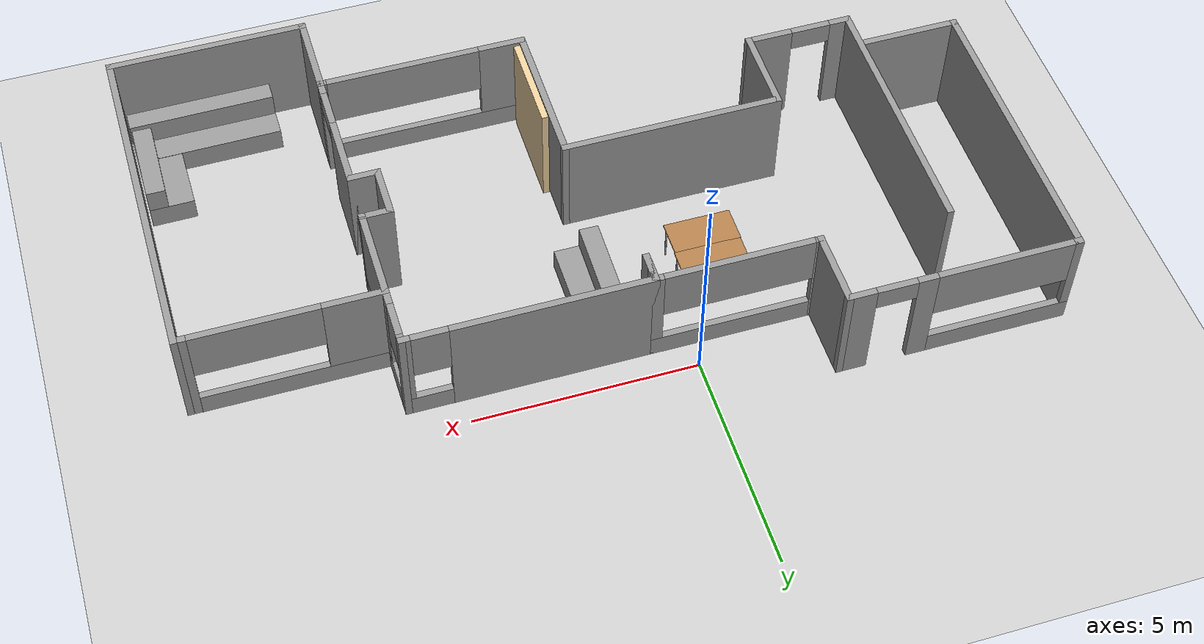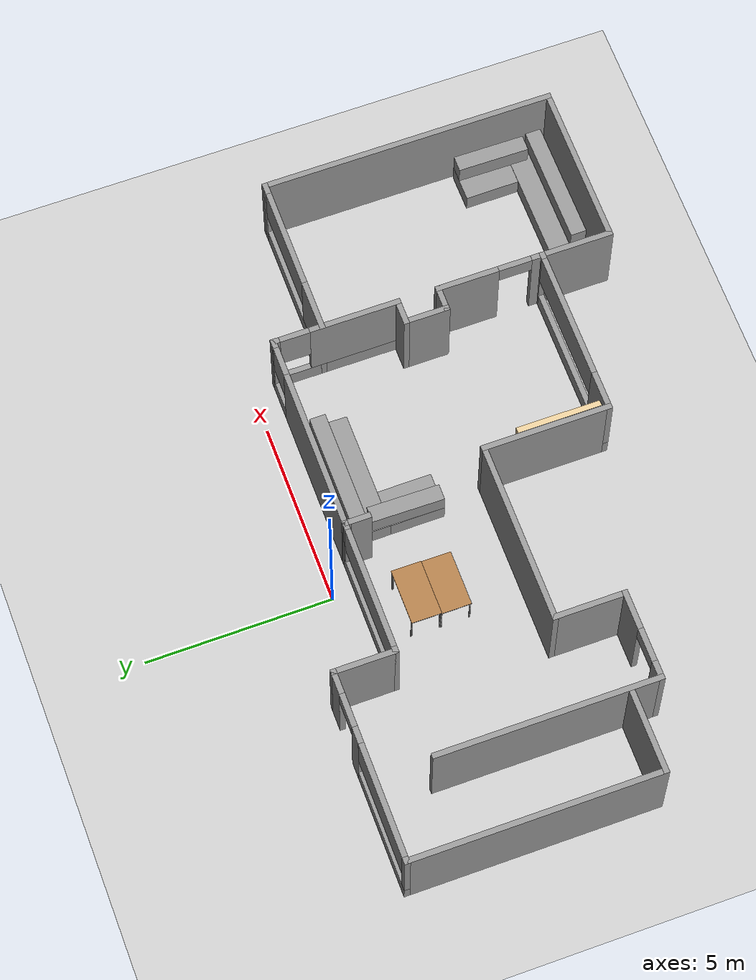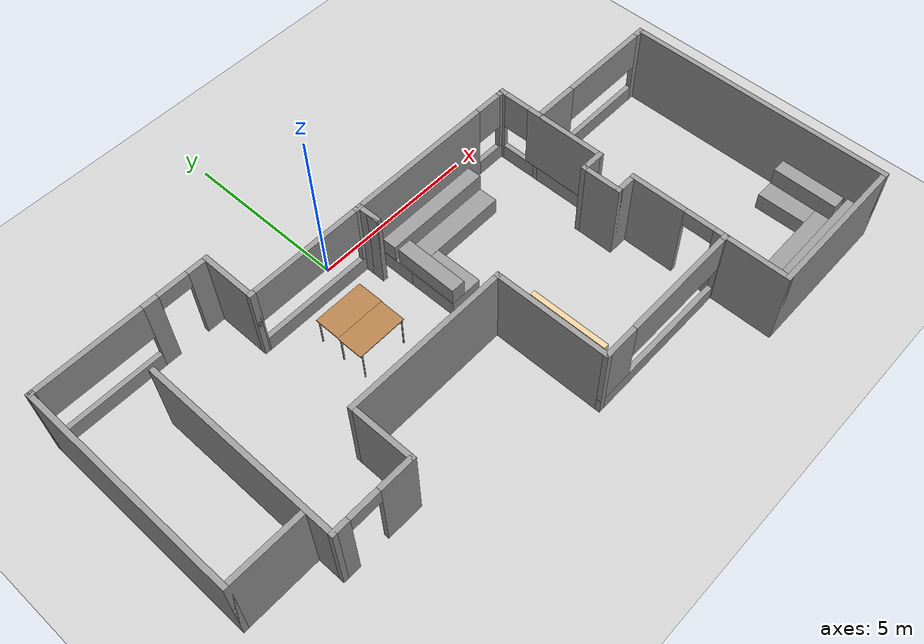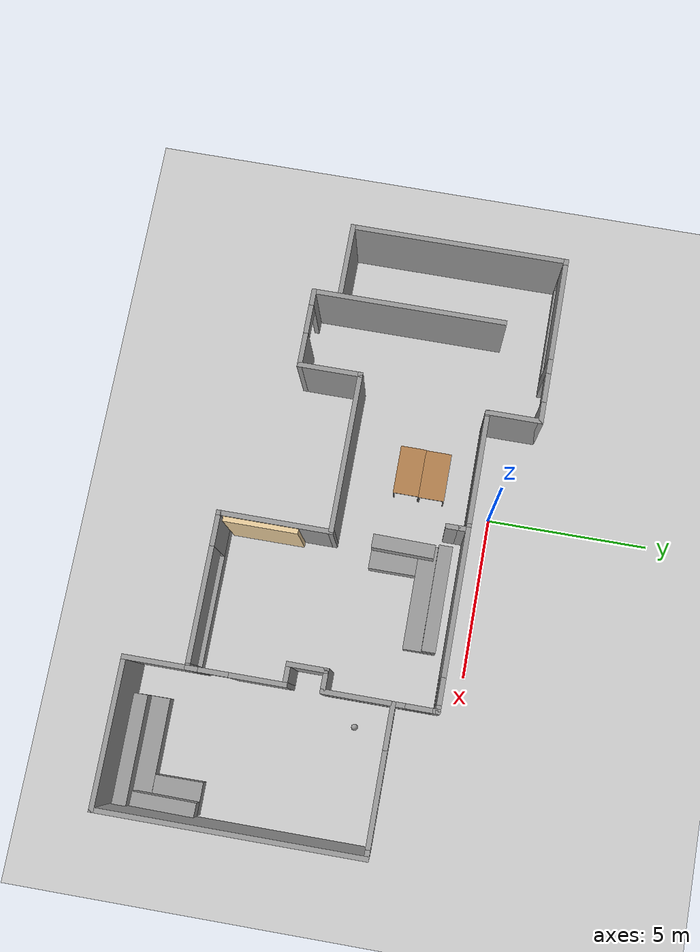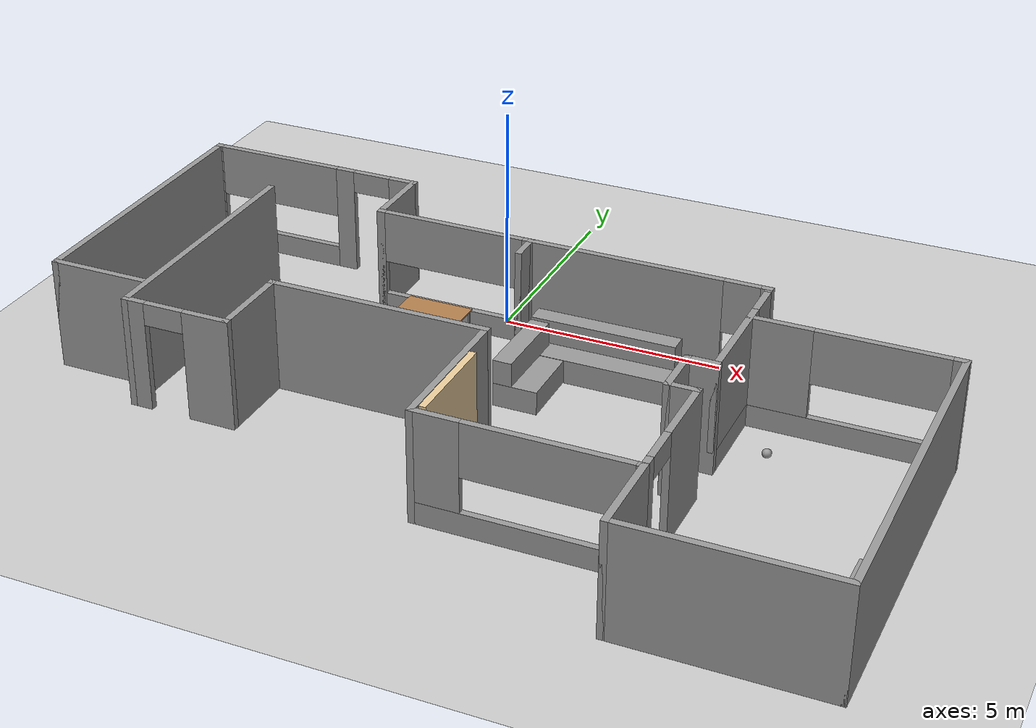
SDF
<sdf version="1.7">
 <world name="default">
  <plugin name="hello" filename="libhello.so"/>
  <light name="sun" type="directional">
   <pose>0 0 10 0 -0 0</pose>
   <diffuse>0.8 0.8 0.8 1</diffuse>
   <specular>0.2 0.2 0.2 1</specular>
   <attenuation>
    <range>1000</range>
    <constant>0.9</constant>
    <linear>0.01</linear>
    <quadratic>0.001</quadratic>
   </attenuation>
   <direction>-0.5 0.1 -0.9</direction>
   <spot><inner_angle>0</inner_angle><outer_angle>0</outer_angle><falloff>0</falloff></spot>
  </light>
  <model name="ground_plane">
   <static>1</static>
   <link name="link">
    <collision name="collision">
     <geometry><plane><normal>0 0 1</normal><size>100 100</size></plane></geometry>
     <surface>
      <contact><collide_bitmask>65535</collide_bitmask></contact>
      <friction><ode><mu>100</mu><mu2>50</mu2></ode></friction>
     </surface>
    </collision>
    <visual name="visual">
     <cast_shadows>0</cast_shadows>
     <geometry><plane><normal>0 0 1</normal><size>100 100</size></plane></geometry>
     <material>
      <script><uri>file://media/materials/scripts/gazebo.material</uri><name>Gazebo/Grey</name></script>
     </material>
    </visual>
   </link>
  </model>
  <gravity>0 0 -9.8</gravity>
  <magnetic_field>6e-06 2.3e-05 -4.2e-05</magnetic_field>
  <atmosphere type="adiabatic"/>
  <physics type="ode">
   <max_step_size>0.001</max_step_size>
   <real_time_factor>1</real_time_factor>
   <real_time_update_rate>1000</real_time_update_rate>
  </physics>
  <scene><ambient>0.4 0.4 0.4 1</ambient><background>0.7 0.7 0.7 1</background><shadows>1</shadows></scene>
  <spherical_coordinates>
   <surface_model>EARTH_WGS84</surface_model>
   <latitude_deg>0</latitude_deg>
   <longitude_deg>0</longitude_deg>
   <elevation>0</elevation>
   <heading_deg>0</heading_deg>
  </spherical_coordinates>
  <model name="home">
   <pose>1.33369 -4.43199 0 0 -0 0</pose>
   <link name="Wall_1">
    <pose>-2.3 3.775 0 0 -0 0</pose>
    <visual name="Wall_1_Visual_0">
     <pose>-1.7772 0 1.25 0 -0 0</pose>
     <geometry><box><size>0.195597 0.15 2.5</size></box></geometry>
     <material>
      <script><uri>file://media/materials/scripts/gazebo.material</uri><name>Gazebo/Grey</name></script>
      <ambient>1 1 1 1</ambient>
     </material>
     <meta><layer>0</layer></meta>
    </visual>
    <collision name="Wall_1_Collision_0">
     <geometry><box><size>0.195597 0.15 2.5</size></box></geometry>
     <pose>-1.7772 0 1.25 0 -0 0</pose>
    </collision>
    <visual name="Wall_1_Visual_1">
     <pose>0.097799 0 0.25 0 -0 0</pose>
     <geometry><box><size>3.5544 0.15 0.5</size></box></geometry>
     <material>
      <script><uri>file://media/materials/scripts/gazebo.material</uri><name>Gazebo/Grey</name></script>
      <ambient>1 1 1 1</ambient>
     </material>
     <meta><layer>0</layer></meta>
    </visual>
    <collision name="Wall_1_Collision_1">
     <geometry><box><size>3.5544 0.15 0.5</size></box></geometry>
     <pose>0.097799 0 0.25 0 -0 0</pose>
    </collision>
    <visual name="Wall_1_Visual_2">
     <pose>1.74801 0 1.5 0 -0 0</pose>
     <geometry><box><size>0.253984 0.15 2</size></box></geometry>
     <material>
      <script><uri>file://media/materials/scripts/gazebo.material</uri><name>Gazebo/Grey</name></script>
      <ambient>1 1 1 1</ambient>
     </material>
     <meta><layer>0</layer></meta>
    </visual>
    <collision name="Wall_1_Collision_2">
     <geometry><box><size>0.253984 0.15 2</size></box></geometry>
     <pose>1.74801 0 1.5 0 -0 0</pose>
    </collision>
    <visual name="Wall_1_Visual_3">
     <pose>-0.029193 0 1.9 0 -0 0</pose>
     <geometry><box><size>3.30042 0.15 1.2</size></box></geometry>
     <material>
      <script><uri>file://media/materials/scripts/gazebo.material</uri><name>Gazebo/Grey</name></script>
      <ambient>1 1 1 1</ambient>
     </material>
     <meta><layer>0</layer></meta>
    </visual>
    <collision name="Wall_1_Collision_3">
     <geometry><box><size>3.30042 0.15 1.2</size></box></geometry>
     <pose>-0.029193 0 1.9 0 -0 0</pose>
    </collision>
   </link>
   <link name="Wall_10">
    <pose>2.55 -3.525 0 0 -0 3.14159</pose>
    <visual name="Wall_10_Visual_0">
     <pose>-2.27293 0 1.25 0 -0 0</pose>
     <geometry><box><size>0.204144 0.15 2.5</size></box></geometry>
     <material>
      <script><uri>file://media/materials/scripts/gazebo.material</uri><name>Gazebo/Grey</name></script>
      <ambient>1 1 1 1</ambient>
     </material>
     <meta><layer>0</layer></meta>
    </visual>
    <collision name="Wall_10_Collision_0">
     <geometry><box><size>0.204144 0.15 2.5</size></box></geometry>
     <pose>-2.27293 0 1.25 0 -0 0</pose>
    </collision>
    <visual name="Wall_10_Visual_1">
     <pose>0.102072 0 0.25 0 -0 0</pose>
     <geometry><box><size>4.54586 0.15 0.5</size></box></geometry>
     <material>
      <script><uri>file://media/materials/scripts/gazebo.material</uri><name>Gazebo/Grey</name></script>
      <ambient>1 1 1 1</ambient>
     </material>
     <meta><layer>0</layer></meta>
    </visual>
    <collision name="Wall_10_Collision_1">
     <geometry><box><size>4.54586 0.15 0.5</size></box></geometry>
     <pose>0.102072 0 0.25 0 -0 0</pose>
    </collision>
    <visual name="Wall_10_Visual_2">
     <pose>1.83208 0 1.5 0 -0 0</pose>
     <geometry><box><size>1.08584 0.15 2</size></box></geometry>
     <material>
      <script><uri>file://media/materials/scripts/gazebo.material</uri><name>Gazebo/Grey</name></script>
      <ambient>1 1 1 1</ambient>
     </material>
     <meta><layer>0</layer></meta>
    </visual>
    <collision name="Wall_10_Collision_2">
     <geometry><box><size>1.08584 0.15 2</size></box></geometry>
     <pose>1.83208 0 1.5 0 -0 0</pose>
    </collision>
    <visual name="Wall_10_Visual_3">
     <pose>-0.440846 0 1.9 0 -0 0</pose>
     <geometry><box><size>3.46002 0.15 1.2</size></box></geometry>
     <material>
      <script><uri>file://media/materials/scripts/gazebo.material</uri><name>Gazebo/Grey</name></script>
      <ambient>1 1 1 1</ambient>
     </material>
     <meta><layer>0</layer></meta>
    </visual>
    <collision name="Wall_10_Collision_3">
     <geometry><box><size>3.46002 0.15 1.2</size></box></geometry>
     <pose>-0.440846 0 1.9 0 -0 0</pose>
    </collision>
   </link>
   <link name="Wall_11">
    <collision name="Wall_11_Collision">
     <geometry><box><size>3.5 0.15 2.5</size></box></geometry>
     <pose>0 0 1.25 0 -0 0</pose>
    </collision>
    <visual name="Wall_11_Visual">
     <pose>0 0 1.25 0 -0 0</pose>
     <geometry><box><size>3.5 0.15 2.5</size></box></geometry>
     <material>
      <script><uri>file://media/materials/scripts/gazebo.material</uri><name>Gazebo/Grey</name></script>
      <ambient>1 1 1 1</ambient>
     </material>
     <meta><layer>0</layer></meta>
    </visual>
    <pose>0.25 -1.85 0 0 -0 1.5708</pose>
   </link>
   <link name="Wall_12">
    <collision name="Wall_12_Collision">
     <geometry><box><size>5 0.15 2.5</size></box></geometry>
     <pose>0 0 1.25 0 -0 0</pose>
    </collision>
    <visual name="Wall_12_Visual">
     <pose>0 0 1.25 0 -0 0</pose>
     <geometry><box><size>5 0.15 2.5</size></box></geometry>
     <material>
      <script><uri>file://media/materials/scripts/gazebo.material</uri><name>Gazebo/Grey</name></script>
      <ambient>1 1 1 1</ambient>
     </material>
     <meta><layer>0</layer></meta>
    </visual>
    <pose>-2.175 -0.175 0 0 -0 3.14159</pose>
   </link>
   <link name="Wall_13">
    <collision name="Wall_13_Collision">
     <geometry><box><size>2 0.15 2.5</size></box></geometry>
     <pose>0 0 1.25 0 -0 0</pose>
    </collision>
    <visual name="Wall_13_Visual">
     <pose>0 0 1.25 0 -0 0</pose>
     <geometry><box><size>2 0.15 2.5</size></box></geometry>
     <material>
      <script><uri>file://media/materials/scripts/gazebo.material</uri><name>Gazebo/Grey</name></script>
      <ambient>1 1 1 1</ambient>
     </material>
     <meta><layer>0</layer></meta>
    </visual>
    <pose>-4.6 -1.1 0 0 -0 -1.5708</pose>
   </link>
   <link name="Wall_14">
    <pose>-5.775 -2.025 0 0 -0 3.14159</pose>
    <visual name="Wall_14_Visual_0">
     <pose>-0.710889 0 1.25 0 -0 0</pose>
     <geometry><box><size>1.07822 0.15 2.5</size></box></geometry>
     <material>
      <script><uri>file://media/materials/scripts/gazebo.material</uri><name>Gazebo/Grey</name></script>
      <ambient>1 1 1 1</ambient>
     </material>
     <meta><layer>0</layer></meta>
    </visual>
    <collision name="Wall_14_Collision_0">
     <geometry><box><size>1.07822 0.15 2.5</size></box></geometry>
     <pose>-0.710889 0 1.25 0 -0 0</pose>
    </collision>
    <visual name="Wall_14_Visual_1">
     <pose>0.989111 0 1.25 0 -0 0</pose>
     <geometry><box><size>0.521779 0.15 2.5</size></box></geometry>
     <material>
      <script><uri>file://media/materials/scripts/gazebo.material</uri><name>Gazebo/Grey</name></script>
      <ambient>1 1 1 1</ambient>
     </material>
     <meta><layer>0</layer></meta>
    </visual>
    <collision name="Wall_14_Collision_1">
     <geometry><box><size>0.521779 0.15 2.5</size></box></geometry>
     <pose>0.989111 0 1.25 0 -0 0</pose>
    </collision>
    <visual name="Wall_14_Visual_2">
     <pose>0.278221 0 2.25 0 -0 0</pose>
     <geometry><box><size>0.9 0.15 0.5</size></box></geometry>
     <material>
      <script><uri>file://media/materials/scripts/gazebo.material</uri><name>Gazebo/Grey</name></script>
      <ambient>1 1 1 1</ambient>
     </material>
     <meta><layer>0</layer></meta>
    </visual>
    <collision name="Wall_14_Collision_2">
     <geometry><box><size>0.9 0.15 0.5</size></box></geometry>
     <pose>0.278221 0 2.25 0 -0 0</pose>
    </collision>
   </link>
   <link name="Wall_15">
    <collision name="Wall_15_Collision">
     <geometry><box><size>6 0.15 2.5</size></box></geometry>
     <pose>0 0 1.25 0 -0 0</pose>
    </collision>
    <visual name="Wall_15_Visual">
     <pose>0 0 1.25 0 -0 0</pose>
     <geometry><box><size>6 0.15 2.5</size></box></geometry>
     <material>
      <script><uri>file://media/materials/scripts/gazebo.material</uri><name>Gazebo/Grey</name></script>
      <ambient>1 1 1 1</ambient>
     </material>
     <meta><layer>0</layer></meta>
    </visual>
    <pose>-6.95 0.9 0 0 -0 1.5708</pose>
   </link>
   <link name="Wall_17">
    <collision name="Wall_17_Collision">
     <geometry><box><size>1.75 0.15 2.5</size></box></geometry>
     <pose>0 0 1.25 0 -0 0</pose>
    </collision>
    <visual name="Wall_17_Visual">
     <pose>0 0 1.25 0 -0 0</pose>
     <geometry><box><size>1.75 0.15 2.5</size></box></geometry>
     <material>
      <script><uri>file://media/materials/scripts/gazebo.material</uri><name>Gazebo/Grey</name></script>
      <ambient>1 1 1 1</ambient>
     </material>
     <meta><layer>0</layer></meta>
    </visual>
    <pose>-4.1 4.575 0 0 -0 1.5708</pose>
   </link>
   <link name="Wall_18">
    <pose>-6.65 5.375 0 0 -0 3.14159</pose>
    <visual name="Wall_18_Visual_0">
     <pose>-2.28809 0 1.25 0 -0 0</pose>
     <geometry><box><size>0.673815 0.15 2.5</size></box></geometry>
     <material>
      <script><uri>file://media/materials/scripts/gazebo.material</uri><name>Gazebo/Grey</name></script>
      <ambient>1 1 1 1</ambient>
     </material>
     <meta><layer>0</layer></meta>
    </visual>
    <collision name="Wall_18_Collision_0">
     <geometry><box><size>0.673815 0.15 2.5</size></box></geometry>
     <pose>-2.28809 0 1.25 0 -0 0</pose>
    </collision>
    <visual name="Wall_18_Visual_1">
     <pose>-0.824481 0 1.25 0 -0 0</pose>
     <geometry><box><size>0.45341 0.15 2.5</size></box></geometry>
     <material>
      <script><uri>file://media/materials/scripts/gazebo.material</uri><name>Gazebo/Grey</name></script>
      <ambient>1 1 1 1</ambient>
     </material>
     <meta><layer>0</layer></meta>
    </visual>
    <collision name="Wall_18_Collision_1">
     <geometry><box><size>0.45341 0.15 2.5</size></box></geometry>
     <pose>-0.824481 0 1.25 0 -0 0</pose>
    </collision>
    <visual name="Wall_18_Visual_2">
     <pose>1.01361 0 0.25 0 -0 0</pose>
     <geometry><box><size>3.22278 0.15 0.5</size></box></geometry>
     <material>
      <script><uri>file://media/materials/scripts/gazebo.material</uri><name>Gazebo/Grey</name></script>
      <ambient>1 1 1 1</ambient>
     </material>
     <meta><layer>0</layer></meta>
    </visual>
    <collision name="Wall_18_Collision_2">
     <geometry><box><size>3.22278 0.15 0.5</size></box></geometry>
     <pose>1.01361 0 0.25 0 -0 0</pose>
    </collision>
    <visual name="Wall_18_Visual_3">
     <pose>2.53082 0 1.5 0 -0 0</pose>
     <geometry><box><size>0.188359 0.15 2</size></box></geometry>
     <material>
      <script><uri>file://media/materials/scripts/gazebo.material</uri><name>Gazebo/Grey</name></script>
      <ambient>1 1 1 1</ambient>
     </material>
     <meta><layer>0</layer></meta>
    </visual>
    <collision name="Wall_18_Collision_3">
     <geometry><box><size>0.188359 0.15 2</size></box></geometry>
     <pose>2.53082 0 1.5 0 -0 0</pose>
    </collision>
    <visual name="Wall_18_Visual_4">
     <pose>0.919433 0 1.9 0 -0 0</pose>
     <geometry><box><size>3.03442 0.15 1.2</size></box></geometry>
     <material>
      <script><uri>file://media/materials/scripts/gazebo.material</uri><name>Gazebo/Grey</name></script>
      <ambient>1 1 1 1</ambient>
     </material>
     <meta><layer>0</layer></meta>
    </visual>
    <collision name="Wall_18_Collision_4">
     <geometry><box><size>3.03442 0.15 1.2</size></box></geometry>
     <pose>0.919433 0 1.9 0 -0 0</pose>
    </collision>
    <visual name="Wall_18_Visual_5">
     <pose>-1.50118 0 2.25 0 -0 0</pose>
     <geometry><box><size>0.9 0.15 0.5</size></box></geometry>
     <material>
      <script><uri>file://media/materials/scripts/gazebo.material</uri><name>Gazebo/Grey</name></script>
      <ambient>1 1 1 1</ambient>
     </material>
     <meta><layer>0</layer></meta>
    </visual>
    <collision name="Wall_18_Collision_5">
     <geometry><box><size>0.9 0.15 0.5</size></box></geometry>
     <pose>-1.50118 0 2.25 0 -0 0</pose>
    </collision>
   </link>
   <link name="Wall_19">
    <collision name="Wall_19_Collision">
     <geometry><box><size>6.75 0.15 2.5</size></box></geometry>
     <pose>0 0 1.25 0 -0 0</pose>
    </collision>
    <visual name="Wall_19_Visual">
     <pose>0 0 1.25 0 -0 0</pose>
     <geometry><box><size>6.75 0.15 2.5</size></box></geometry>
     <material>
      <script><uri>file://media/materials/scripts/gazebo.material</uri><name>Gazebo/Grey</name></script>
      <ambient>1 1 1 1</ambient>
     </material>
     <meta><layer>0</layer></meta>
    </visual>
    <pose>-9.2 2.075 0 0 -0 -1.5708</pose>
   </link>
   <link name="Wall_2">
    <collision name="Wall_2_Collision">
     <geometry><box><size>0.75 0.15 2.5</size></box></geometry>
     <pose>0 0 1.25 0 -0 0</pose>
    </collision>
    <visual name="Wall_2_Visual">
     <pose>0 0 1.25 0 -0 0</pose>
     <geometry><box><size>0.75 0.15 2.5</size></box></geometry>
     <material>
      <script><uri>file://media/materials/scripts/gazebo.material</uri><name>Gazebo/Grey</name></script>
      <ambient>1 1 1 1</ambient>
     </material>
     <meta><layer>0</layer></meta>
    </visual>
    <pose>-0.5 3.475 0 0 -0 -1.5708</pose>
   </link>
   <link name="Wall_20">
    <collision name="Wall_20_Collision">
     <geometry><box><size>2.25 0.15 2.5</size></box></geometry>
     <pose>0 0 1.25 0 -0 0</pose>
    </collision>
    <visual name="Wall_20_Visual">
     <pose>0 0 1.25 0 -0 0</pose>
     <geometry><box><size>2.25 0.15 2.5</size></box></geometry>
     <material>
      <script><uri>file://media/materials/scripts/gazebo.material</uri><name>Gazebo/Grey</name></script>
      <ambient>1 1 1 1</ambient>
     </material>
     <meta><layer>0</layer></meta>
    </visual>
    <pose>-8.15 -1.225 0 0 -0 0</pose>
   </link>
   <link name="Wall_22">
    <collision name="Wall_22_Collision">
     <geometry><box><size>2 0.15 2.5</size></box></geometry>
     <pose>0 0 1.25 0 -0 0</pose>
    </collision>
    <visual name="Wall_22_Visual">
     <pose>0 0 1.25 0 -0 0</pose>
     <geometry><box><size>2 0.15 2.5</size></box></geometry>
     <material>
      <script><uri>file://media/materials/scripts/gazebo.material</uri><name>Gazebo/Grey</name></script>
      <ambient>1 1 1 1</ambient>
     </material>
     <meta><layer>0</layer></meta>
    </visual>
    <pose>4.85 -4.45 0 0 -0 -1.5708</pose>
   </link>
   <link name="Wall_23">
    <collision name="Wall_23_Collision">
     <geometry><box><size>4.5 0.15 2.5</size></box></geometry>
     <pose>0 0 1.25 0 -0 0</pose>
    </collision>
    <visual name="Wall_23_Visual">
     <pose>0 0 1.25 0 -0 0</pose>
     <geometry><box><size>4.5 0.15 2.5</size></box></geometry>
     <material>
      <script><uri>file://media/materials/scripts/gazebo.material</uri><name>Gazebo/Grey</name></script>
      <ambient>1 1 1 1</ambient>
     </material>
     <meta><layer>0</layer></meta>
    </visual>
    <pose>7.025 -5.375 0 0 -0 0</pose>
   </link>
   <link name="Wall_24">
    <collision name="Wall_24_Collision">
     <geometry><box><size>8 0.15 2.5</size></box></geometry>
     <pose>0 0 1.25 0 -0 0</pose>
    </collision>
    <visual name="Wall_24_Visual">
     <pose>0 0 1.25 0 -0 0</pose>
     <geometry><box><size>8 0.15 2.5</size></box></geometry>
     <material>
      <script><uri>file://media/materials/scripts/gazebo.material</uri><name>Gazebo/Grey</name></script>
      <ambient>1 1 1 1</ambient>
     </material>
     <meta><layer>0</layer></meta>
    </visual>
    <pose>9.2 -1.45 0 0 -0 1.5708</pose>
   </link>
   <link name="Wall_25">
    <pose>7.025 2.475 0 0 -0 3.14159</pose>
    <visual name="Wall_25_Visual_0">
     <pose>-2.08764 0 1.25 0 -0 0</pose>
     <geometry><box><size>0.324712 0.15 2.5</size></box></geometry>
     <material>
      <script><uri>file://media/materials/scripts/gazebo.material</uri><name>Gazebo/Grey</name></script>
      <ambient>1 1 1 1</ambient>
     </material>
     <meta><layer>0</layer></meta>
    </visual>
    <collision name="Wall_25_Collision_0">
     <geometry><box><size>0.324712 0.15 2.5</size></box></geometry>
     <pose>-2.08764 0 1.25 0 -0 0</pose>
    </collision>
    <visual name="Wall_25_Visual_1">
     <pose>0.162356 0 0.25 0 -0 0</pose>
     <geometry><box><size>4.17529 0.15 0.5</size></box></geometry>
     <material>
      <script><uri>file://media/materials/scripts/gazebo.material</uri><name>Gazebo/Grey</name></script>
      <ambient>1 1 1 1</ambient>
     </material>
     <meta><layer>0</layer></meta>
    </visual>
    <collision name="Wall_25_Collision_1">
     <geometry><box><size>4.17529 0.15 0.5</size></box></geometry>
     <pose>0.162356 0 0.25 0 -0 0</pose>
    </collision>
    <visual name="Wall_25_Visual_2">
     <pose>1.54656 0 1.5 0 -0 0</pose>
     <geometry><box><size>1.40687 0.15 2</size></box></geometry>
     <material>
      <script><uri>file://media/materials/scripts/gazebo.material</uri><name>Gazebo/Grey</name></script>
      <ambient>1 1 1 1</ambient>
     </material>
     <meta><layer>0</layer></meta>
    </visual>
    <collision name="Wall_25_Collision_2">
     <geometry><box><size>1.40687 0.15 2</size></box></geometry>
     <pose>1.54656 0 1.5 0 -0 0</pose>
    </collision>
    <visual name="Wall_25_Visual_3">
     <pose>-0.54108 0 1.9 0 -0 0</pose>
     <geometry><box><size>2.76842 0.15 1.2</size></box></geometry>
     <material>
      <script><uri>file://media/materials/scripts/gazebo.material</uri><name>Gazebo/Grey</name></script>
      <ambient>1 1 1 1</ambient>
     </material>
     <meta><layer>0</layer></meta>
    </visual>
    <collision name="Wall_25_Collision_3">
     <geometry><box><size>2.76842 0.15 1.2</size></box></geometry>
     <pose>-0.54108 0 1.9 0 -0 0</pose>
    </collision>
   </link>
   <link name="Wall_3">
    <collision name="Wall_3_Collision">
     <geometry><box><size>0.75 0.15 2.5</size></box></geometry>
     <pose>0 0 1.25 0 -0 0</pose>
    </collision>
    <visual name="Wall_3_Visual">
     <pose>0 0 1.25 0 -0 0</pose>
     <geometry><box><size>0.75 0.15 2.5</size></box></geometry>
     <material>
      <script><uri>file://media/materials/scripts/gazebo.material</uri><name>Gazebo/Grey</name></script>
      <ambient>1 1 1 1</ambient>
     </material>
     <meta><layer>0</layer></meta>
    </visual>
    <pose>-0.5 3.475 0 0 -0 1.5708</pose>
   </link>
   <link name="Wall_4">
    <pose>2.175 3.775 0 0 -0 0</pose>
    <visual name="Wall_4_Visual_0">
     <pose>-0.528672 0 1.25 0 -0 0</pose>
     <geometry><box><size>4.44266 0.15 2.5</size></box></geometry>
     <material>
      <script><uri>file://media/materials/scripts/gazebo.material</uri><name>Gazebo/Grey</name></script>
      <ambient>1 1 1 1</ambient>
     </material>
     <meta><layer>0</layer></meta>
    </visual>
    <collision name="Wall_4_Collision_0">
     <geometry><box><size>4.44266 0.15 2.5</size></box></geometry>
     <pose>-0.528672 0 1.25 0 -0 0</pose>
    </collision>
    <visual name="Wall_4_Visual_1">
     <pose>2.22133 0 0.25 0 -0 0</pose>
     <geometry><box><size>1.05734 0.15 0.5</size></box></geometry>
     <material>
      <script><uri>file://media/materials/scripts/gazebo.material</uri><name>Gazebo/Grey</name></script>
      <ambient>1 1 1 1</ambient>
     </material>
     <meta><layer>0</layer></meta>
    </visual>
    <collision name="Wall_4_Collision_1">
     <geometry><box><size>1.05734 0.15 0.5</size></box></geometry>
     <pose>2.22133 0 0.25 0 -0 0</pose>
    </collision>
    <visual name="Wall_4_Visual_2">
     <pose>2.62133 0 1.5 0 -0 0</pose>
     <geometry><box><size>0.257344 0.15 2</size></box></geometry>
     <material>
      <script><uri>file://media/materials/scripts/gazebo.material</uri><name>Gazebo/Grey</name></script>
      <ambient>1 1 1 1</ambient>
     </material>
     <meta><layer>0</layer></meta>
    </visual>
    <collision name="Wall_4_Collision_2">
     <geometry><box><size>0.257344 0.15 2</size></box></geometry>
     <pose>2.62133 0 1.5 0 -0 0</pose>
    </collision>
    <visual name="Wall_4_Visual_3">
     <pose>2.09266 0 1.9 0 -0 0</pose>
     <geometry><box><size>0.8 0.15 1.2</size></box></geometry>
     <material>
      <script><uri>file://media/materials/scripts/gazebo.material</uri><name>Gazebo/Grey</name></script>
      <ambient>1 1 1 1</ambient>
     </material>
     <meta><layer>0</layer></meta>
    </visual>
    <collision name="Wall_4_Collision_3">
     <geometry><box><size>0.8 0.15 1.2</size></box></geometry>
     <pose>2.09266 0 1.9 0 -0 0</pose>
    </collision>
   </link>
   <link name="Wall_5">
    <pose>4.85 2.1 0 0 -0 -1.5708</pose>
    <visual name="Wall_5_Visual_0">
     <pose>-1.63495 0 1.25 0 -0 0</pose>
     <geometry><box><size>0.230105 0.15 2.5</size></box></geometry>
     <material>
      <script><uri>file://media/materials/scripts/gazebo.material</uri><name>Gazebo/Grey</name></script>
      <ambient>1 1 1 1</ambient>
     </material>
     <meta><layer>0</layer></meta>
    </visual>
    <collision name="Wall_5_Collision_0">
     <geometry><box><size>0.230105 0.15 2.5</size></box></geometry>
     <pose>-1.63495 0 1.25 0 -0 0</pose>
    </collision>
    <visual name="Wall_5_Visual_1">
     <pose>0.115053 0 0.25 0 -0 0</pose>
     <geometry><box><size>3.26989 0.15 0.5</size></box></geometry>
     <material>
      <script><uri>file://media/materials/scripts/gazebo.material</uri><name>Gazebo/Grey</name></script>
      <ambient>1 1 1 1</ambient>
     </material>
     <meta><layer>0</layer></meta>
    </visual>
    <collision name="Wall_5_Collision_1">
     <geometry><box><size>3.26989 0.15 0.5</size></box></geometry>
     <pose>0.115053 0 0.25 0 -0 0</pose>
    </collision>
    <visual name="Wall_5_Visual_2">
     <pose>0.515053 0 1.5 0 -0 0</pose>
     <geometry><box><size>2.4699 0.15 2</size></box></geometry>
     <material>
      <script><uri>file://media/materials/scripts/gazebo.material</uri><name>Gazebo/Grey</name></script>
      <ambient>1 1 1 1</ambient>
     </material>
     <meta><layer>0</layer></meta>
    </visual>
    <collision name="Wall_5_Collision_2">
     <geometry><box><size>2.4699 0.15 2</size></box></geometry>
     <pose>0.515053 0 1.5 0 -0 0</pose>
    </collision>
    <visual name="Wall_5_Visual_3">
     <pose>-1.1199 0 1.9 0 -0 0</pose>
     <geometry><box><size>0.8 0.15 1.2</size></box></geometry>
     <material>
      <script><uri>file://media/materials/scripts/gazebo.material</uri><name>Gazebo/Grey</name></script>
      <ambient>1 1 1 1</ambient>
     </material>
     <meta><layer>0</layer></meta>
    </visual>
    <collision name="Wall_5_Collision_3">
     <geometry><box><size>0.8 0.15 1.2</size></box></geometry>
     <pose>-1.1199 0 1.9 0 -0 0</pose>
    </collision>
   </link>
   <link name="Wall_6">
    <collision name="Wall_6_Collision">
     <geometry><box><size>0.75 0.15 2.5</size></box></geometry>
     <pose>0 0 1.25 0 -0 0</pose>
    </collision>
    <visual name="Wall_6_Visual">
     <pose>0 0 1.25 0 -0 0</pose>
     <geometry><box><size>0.75 0.15 2.5</size></box></geometry>
     <material>
      <script><uri>file://media/materials/scripts/gazebo.material</uri><name>Gazebo/Grey</name></script>
      <ambient>1 1 1 1</ambient>
     </material>
     <meta><layer>0</layer></meta>
    </visual>
    <pose>4.55 0.425 0 0 -0 3.14159</pose>
   </link>
   <link name="Wall_7">
    <collision name="Wall_7_Collision">
     <geometry><box><size>1.25 0.15 2.5</size></box></geometry>
     <pose>0 0 1.25 0 -0 0</pose>
    </collision>
    <visual name="Wall_7_Visual">
     <pose>0 0 1.25 0 -0 0</pose>
     <geometry><box><size>1.25 0.15 2.5</size></box></geometry>
     <material>
      <script><uri>file://media/materials/scripts/gazebo.material</uri><name>Gazebo/Grey</name></script>
      <ambient>1 1 1 1</ambient>
     </material>
     <meta><layer>0</layer></meta>
    </visual>
    <pose>4.25 -0.125 0 0 -0 -1.5708</pose>
   </link>
   <link name="Wall_8">
    <collision name="Wall_8_Collision">
     <geometry><box><size>0.75 0.15 2.5</size></box></geometry>
     <pose>0 0 1.25 0 -0 0</pose>
    </collision>
    <visual name="Wall_8_Visual">
     <pose>0 0 1.25 0 -0 0</pose>
     <geometry><box><size>0.75 0.15 2.5</size></box></geometry>
     <material>
      <script><uri>file://media/materials/scripts/gazebo.material</uri><name>Gazebo/Grey</name></script>
      <ambient>1 1 1 1</ambient>
     </material>
     <meta><layer>0</layer></meta>
    </visual>
    <pose>4.55 -0.675 0 0 -0 0</pose>
   </link>
   <link name="Wall_9">
    <pose>4.85 -2.1 0 0 -0 -1.5708</pose>
    <visual name="Wall_9_Visual_0">
     <pose>-0.642425 0 1.25 0 -0 0</pose>
     <geometry><box><size>1.71515 0.15 2.5</size></box></geometry>
     <material>
      <script><uri>file://media/materials/scripts/gazebo.material</uri><name>Gazebo/Grey</name></script>
      <ambient>1 1 1 1</ambient>
     </material>
     <meta><layer>0</layer></meta>
    </visual>
    <collision name="Wall_9_Collision_0">
     <geometry><box><size>1.71515 0.15 2.5</size></box></geometry>
     <pose>-0.642425 0 1.25 0 -0 0</pose>
    </collision>
    <visual name="Wall_9_Visual_1">
     <pose>1.30757 0 1.25 0 -0 0</pose>
     <geometry><box><size>0.38485 0.15 2.5</size></box></geometry>
     <material>
      <script><uri>file://media/materials/scripts/gazebo.material</uri><name>Gazebo/Grey</name></script>
      <ambient>1 1 1 1</ambient>
     </material>
     <meta><layer>0</layer></meta>
    </visual>
    <collision name="Wall_9_Collision_1">
     <geometry><box><size>0.38485 0.15 2.5</size></box></geometry>
     <pose>1.30757 0 1.25 0 -0 0</pose>
    </collision>
    <visual name="Wall_9_Visual_2">
     <pose>0.66515 0 2.25 0 -0 0</pose>
     <geometry><box><size>0.9 0.15 0.5</size></box></geometry>
     <material>
      <script><uri>file://media/materials/scripts/gazebo.material</uri><name>Gazebo/Grey</name></script>
      <ambient>1 1 1 1</ambient>
     </material>
     <meta><layer>0</layer></meta>
    </visual>
    <collision name="Wall_9_Collision_2">
     <geometry><box><size>0.9 0.15 0.5</size></box></geometry>
     <pose>0.66515 0 2.25 0 -0 0</pose>
    </collision>
   </link>
   <static>1</static>
  </model>
  <model name="table">
   <static>1</static>
   <link name="link">
    <collision name="surface">
     <pose>0 0 1 0 -0 0</pose>
     <geometry><box><size>1.5 0.8 0.03</size></box></geometry>
     <surface><friction><ode><mu>0.6</mu><mu2>0.6</mu2></ode></friction></surface>
    </collision>
    <visual name="visual1">
     <pose>0 0 1 0 -0 0</pose>
     <geometry><box><size>1.5 0.8 0.03</size></box></geometry>
     <material>
      <script><uri>file://media/materials/scripts/gazebo.material</uri><name>Gazebo/Wood</name></script>
     </material>
    </visual>
    <collision name="front_left_leg">
     <pose>0.68 0.38 0.5 0 -0 0</pose>
     <geometry><cylinder><radius>0.02</radius><length>1</length></cylinder></geometry>
    </collision>
    <visual name="front_left_leg">
     <pose>0.68 0.38 0.5 0 -0 0</pose>
     <geometry><cylinder><radius>0.02</radius><length>1</length></cylinder></geometry>
     <material>
      <script><uri>file://media/materials/scripts/gazebo.material</uri><name>Gazebo/Grey</name></script>
     </material>
    </visual>
    <collision name="front_right_leg">
     <pose>0.68 -0.38 0.5 0 -0 0</pose>
     <geometry><cylinder><radius>0.02</radius><length>1</length></cylinder></geometry>
    </collision>
    <visual name="front_right_leg">
     <pose>0.68 -0.38 0.5 0 -0 0</pose>
     <geometry><cylinder><radius>0.02</radius><length>1</length></cylinder></geometry>
     <material>
      <script><uri>file://media/materials/scripts/gazebo.material</uri><name>Gazebo/Grey</name></script>
     </material>
    </visual>
    <collision name="back_right_leg">
     <pose>-0.68 -0.38 0.5 0 -0 0</pose>
     <geometry><cylinder><radius>0.02</radius><length>1</length></cylinder></geometry>
    </collision>
    <visual name="back_right_leg">
     <pose>-0.68 -0.38 0.5 0 -0 0</pose>
     <geometry><cylinder><radius>0.02</radius><length>1</length></cylinder></geometry>
     <material>
      <script><uri>file://media/materials/scripts/gazebo.material</uri><name>Gazebo/Grey</name></script>
     </material>
    </visual>
    <collision name="back_left_leg">
     <pose>-0.68 0.38 0.5 0 -0 0</pose>
     <geometry><cylinder><radius>0.02</radius><length>1</length></cylinder></geometry>
    </collision>
    <visual name="back_left_leg">
     <pose>-0.68 0.38 0.5 0 -0 0</pose>
     <geometry><cylinder><radius>0.02</radius><length>1</length></cylinder></geometry>
     <material>
      <script><uri>file://media/materials/scripts/gazebo.material</uri><name>Gazebo/Grey</name></script>
     </material>
    </visual>
   </link>
   <pose>-0.917423 -1.8949 0 0 -0 0</pose>
  </model>
  <model name="table_0">
   <static>1</static>
   <link name="link">
    <collision name="surface">
     <pose>0 0 1 0 -0 0</pose>
     <geometry><box><size>1.5 0.8 0.03</size></box></geometry>
     <surface><friction><ode><mu>0.6</mu><mu2>0.6</mu2></ode></friction></surface>
    </collision>
    <visual name="visual1">
     <pose>0 0 1 0 -0 0</pose>
     <geometry><box><size>1.5 0.8 0.03</size></box></geometry>
     <material>
      <script><uri>file://media/materials/scripts/gazebo.material</uri><name>Gazebo/Wood</name></script>
     </material>
    </visual>
    <collision name="front_left_leg">
     <pose>0.68 0.38 0.5 0 -0 0</pose>
     <geometry><cylinder><radius>0.02</radius><length>1</length></cylinder></geometry>
    </collision>
    <visual name="front_left_leg">
     <pose>0.68 0.38 0.5 0 -0 0</pose>
     <geometry><cylinder><radius>0.02</radius><length>1</length></cylinder></geometry>
     <material>
      <script><uri>file://media/materials/scripts/gazebo.material</uri><name>Gazebo/Grey</name></script>
     </material>
    </visual>
    <collision name="front_right_leg">
     <pose>0.68 -0.38 0.5 0 -0 0</pose>
     <geometry><cylinder><radius>0.02</radius><length>1</length></cylinder></geometry>
    </collision>
    <visual name="front_right_leg">
     <pose>0.68 -0.38 0.5 0 -0 0</pose>
     <geometry><cylinder><radius>0.02</radius><length>1</length></cylinder></geometry>
     <material>
      <script><uri>file://media/materials/scripts/gazebo.material</uri><name>Gazebo/Grey</name></script>
     </material>
    </visual>
    <collision name="back_right_leg">
     <pose>-0.68 -0.38 0.5 0 -0 0</pose>
     <geometry><cylinder><radius>0.02</radius><length>1</length></cylinder></geometry>
    </collision>
    <visual name="back_right_leg">
     <pose>-0.68 -0.38 0.5 0 -0 0</pose>
     <geometry><cylinder><radius>0.02</radius><length>1</length></cylinder></geometry>
     <material>
      <script><uri>file://media/materials/scripts/gazebo.material</uri><name>Gazebo/Grey</name></script>
     </material>
    </visual>
    <collision name="back_left_leg">
     <pose>-0.68 0.38 0.5 0 -0 0</pose>
     <geometry><cylinder><radius>0.02</radius><length>1</length></cylinder></geometry>
    </collision>
    <visual name="back_left_leg">
     <pose>-0.68 0.38 0.5 0 -0 0</pose>
     <geometry><cylinder><radius>0.02</radius><length>1</length></cylinder></geometry>
     <material>
      <script><uri>file://media/materials/scripts/gazebo.material</uri><name>Gazebo/Grey</name></script>
     </material>
    </visual>
   </link>
   <pose>-0.932979 -2.68394 0 0 -0 0</pose>
  </model>
  <model name="Sofa">
   <link name="link_0">
    <inertial>
     <mass>1.78921</mass>
     <inertia><ixx>0.19365</ixx><ixy>0</ixy><ixz>0</ixz><iyy>1.64196</iyy><iyz>0</iyz><izz>1.74651</izz></inertia>
    </inertial>
    <pose>0.515913 0.4827 -0.27126 0 -0 0</pose>
    <visual name="visual">
     <geometry><box><size>3.27317 1 0.546616</size></box></geometry>
     <material>
      <lighting>1</lighting>
      <script><uri>file://media/materials/scripts/gazebo.material</uri><name>Gazebo/Grey</name></script>
      <shader type="pixel"/>
      <emissive>0 0 0 1</emissive>
     </material>
    </visual>
    <collision name="collision">
     <geometry><box><size>3.27317 1 0.546616</size></box></geometry>
     <surface>
      <friction>
       <ode><mu>1</mu><mu2>1</mu2><fdir1>0 0 0</fdir1><slip1>0</slip1><slip2>0</slip2></ode>
       <torsional>
        <coefficient>1</coefficient>
        <patch_radius>0</patch_radius>
        <surface_radius>0</surface_radius>
        <use_patch_radius>1</use_patch_radius>
        <ode><slip>0</slip></ode>
       </torsional>
      </friction>
      <bounce><restitution_coefficient>0</restitution_coefficient><threshold>1e+06</threshold></bounce>
      <contact>
       <collide_without_contact>0</collide_without_contact>
       <collide_without_contact_bitmask>1</collide_without_contact_bitmask>
       <collide_bitmask>1</collide_bitmask>
       <ode>
        <soft_cfm>0</soft_cfm>
        <soft_erp>0.2</soft_erp>
        <kp>1e+13</kp>
        <kd>1</kd>
        <max_vel>0.01</max_vel>
        <min_depth>0</min_depth>
       </ode>
       <bullet>
        <split_impulse>1</split_impulse>
        <split_impulse_penetration_threshold>-0.01</split_impulse_penetration_threshold>
        <soft_cfm>0</soft_cfm>
        <soft_erp>0.2</soft_erp>
        <kp>1e+13</kp>
        <kd>1</kd>
       </bullet>
      </contact>
     </surface>
    </collision>
   </link>
   <link name="link_0_clone">
    <inertial>
     <mass>0.763707</mass>
     <inertia>
      <ixx>0.0306107</ixx>
      <ixy>0</ixy>
      <ixz>0</ixz>
      <iyy>0.700856</iyy>
      <iyz>0</iyz>
      <izz>0.693436</izz>
     </inertia>
    </inertial>
    <pose>0.515913 0.769281 0.275356 0 -0 0</pose>
    <visual name="visual">
     <geometry><box><size>3.27317 0.426838 0.546616</size></box></geometry>
     <material>
      <lighting>1</lighting>
      <script><uri>file://media/materials/scripts/gazebo.material</uri><name>Gazebo/Grey</name></script>
      <shader type="pixel"/>
      <emissive>0 0 0 1</emissive>
     </material>
    </visual>
    <collision name="collision">
     <geometry><box><size>3.27317 0.426838 0.546616</size></box></geometry>
     <surface>
      <friction>
       <ode><mu>1</mu><mu2>1</mu2><fdir1>0 0 0</fdir1><slip1>0</slip1><slip2>0</slip2></ode>
       <torsional>
        <coefficient>1</coefficient>
        <patch_radius>0</patch_radius>
        <surface_radius>0</surface_radius>
        <use_patch_radius>1</use_patch_radius>
        <ode><slip>0</slip></ode>
       </torsional>
      </friction>
      <bounce><restitution_coefficient>0</restitution_coefficient><threshold>1e+06</threshold></bounce>
      <contact>
       <collide_without_contact>0</collide_without_contact>
       <collide_without_contact_bitmask>1</collide_without_contact_bitmask>
       <collide_bitmask>1</collide_bitmask>
       <ode>
        <soft_cfm>0</soft_cfm>
        <soft_erp>0.2</soft_erp>
        <kp>1e+13</kp>
        <kd>1</kd>
        <max_vel>0.01</max_vel>
        <min_depth>0</min_depth>
       </ode>
       <bullet>
        <split_impulse>1</split_impulse>
        <split_impulse_penetration_threshold>-0.01</split_impulse_penetration_threshold>
        <soft_cfm>0</soft_cfm>
        <soft_erp>0.2</soft_erp>
        <kp>1e+13</kp>
        <kd>1</kd>
       </bullet>
      </contact>
     </surface>
    </collision>
   </link>
   <link name="link_0_clone_clone">
    <inertial>
     <mass>0.450951</mass>
     <inertia>
      <ixx>0.0180749</ixx>
      <ixy>0</ixy>
      <ixz>0</ixz>
      <iyy>0.151605</iyy>
      <iyz>0</iyz>
      <izz>0.147223</izz>
     </inertia>
    </inertial>
    <pose>-0.891825 -0.505668 0.267165 0 -0 1.5548</pose>
    <visual name="visual">
     <geometry><box><size>1.93274 0.426838 0.546616</size></box></geometry>
     <material>
      <lighting>1</lighting>
      <script><uri>file://media/materials/scripts/gazebo.material</uri><name>Gazebo/Grey</name></script>
      <shader type="pixel"/>
      <emissive>0 0 0 1</emissive>
     </material>
    </visual>
    <collision name="collision">
     <geometry><box><size>1.93274 0.426838 0.546616</size></box></geometry>
     <surface>
      <friction>
       <ode><mu>1</mu><mu2>1</mu2><fdir1>0 0 0</fdir1><slip1>0</slip1><slip2>0</slip2></ode>
       <torsional>
        <coefficient>1</coefficient>
        <patch_radius>0</patch_radius>
        <surface_radius>0</surface_radius>
        <use_patch_radius>1</use_patch_radius>
        <ode><slip>0</slip></ode>
       </torsional>
      </friction>
      <bounce><restitution_coefficient>0</restitution_coefficient><threshold>1e+06</threshold></bounce>
      <contact>
       <collide_without_contact>0</collide_without_contact>
       <collide_without_contact_bitmask>1</collide_without_contact_bitmask>
       <collide_bitmask>1</collide_bitmask>
       <ode>
        <soft_cfm>0</soft_cfm>
        <soft_erp>0.2</soft_erp>
        <kp>1e+13</kp>
        <kd>1</kd>
        <max_vel>0.01</max_vel>
        <min_depth>0</min_depth>
       </ode>
       <bullet>
        <split_impulse>1</split_impulse>
        <split_impulse_penetration_threshold>-0.01</split_impulse_penetration_threshold>
        <soft_cfm>0</soft_cfm>
        <soft_erp>0.2</soft_erp>
        <kp>1e+13</kp>
        <kd>1</kd>
       </bullet>
      </contact>
     </surface>
    </collision>
   </link>
   <link name="link_1">
    <inertial>
     <mass>0.773084</mass>
     <inertia>
      <ixx>0.155067</ixx>
      <ixy>0</ixy>
      <ixz>0</ixz>
      <iyy>0.0825363</iyy>
      <iyz>0</iyz>
      <izz>0.201378</izz>
     </inertia>
    </inertial>
    <pose>-0.620672 -0.746314 -0.27126 0 -0 0</pose>
    <visual name="visual">
     <geometry><box><size>1 1.45803 0.530235</size></box></geometry>
     <material>
      <lighting>1</lighting>
      <script><uri>file://media/materials/scripts/gazebo.material</uri><name>Gazebo/Grey</name></script>
      <shader type="pixel"/>
      <emissive>0 0 0 1</emissive>
     </material>
    </visual>
    <collision name="collision">
     <geometry><box><size>1 1.45803 0.530235</size></box></geometry>
     <surface>
      <friction>
       <ode><mu>1</mu><mu2>1</mu2><fdir1>0 0 0</fdir1><slip1>0</slip1><slip2>0</slip2></ode>
       <torsional>
        <coefficient>1</coefficient>
        <patch_radius>0</patch_radius>
        <surface_radius>0</surface_radius>
        <use_patch_radius>1</use_patch_radius>
        <ode><slip>0</slip></ode>
       </torsional>
      </friction>
      <bounce><restitution_coefficient>0</restitution_coefficient><threshold>1e+06</threshold></bounce>
      <contact>
       <collide_without_contact>0</collide_without_contact>
       <collide_without_contact_bitmask>1</collide_without_contact_bitmask>
       <collide_bitmask>1</collide_bitmask>
       <ode>
        <soft_cfm>0</soft_cfm>
        <soft_erp>0.2</soft_erp>
        <kp>1e+13</kp>
        <kd>1</kd>
        <max_vel>0.01</max_vel>
        <min_depth>0</min_depth>
       </ode>
       <bullet>
        <split_impulse>1</split_impulse>
        <split_impulse_penetration_threshold>-0.01</split_impulse_penetration_threshold>
        <soft_cfm>0</soft_cfm>
        <soft_erp>0.2</soft_erp>
        <kp>1e+13</kp>
        <kd>1</kd>
       </bullet>
      </contact>
     </surface>
    </collision>
   </link>
   <joint name="link_0_JOINT_0" type="revolute">
    <parent>link_0</parent>
    <child>link_1</child>
    <axis>
     <xyz>1 0 0</xyz>
     <limit>
      <lower>-1.79769e+308</lower>
      <upper>1.79769e+308</upper>
      <effort>-1</effort>
      <velocity>-1</velocity>
     </limit>
     <dynamics>
      <spring_reference>0</spring_reference>
      <spring_stiffness>0</spring_stiffness>
      <damping>0</damping>
     </dynamics>
    </axis>
    <physics>
     <ode><limit><cfm>0</cfm><erp>0.2</erp></limit><suspension><cfm>0</cfm><erp>0.2</erp></suspension></ode>
    </physics>
   </joint>
   <joint name="link_0_JOINT_2" type="revolute">
    <parent>link_0</parent>
    <child>link_0_clone</child>
    <axis>
     <xyz>1 0 0</xyz>
     <limit>
      <lower>-1.79769e+308</lower>
      <upper>1.79769e+308</upper>
      <effort>-1</effort>
      <velocity>-1</velocity>
     </limit>
     <dynamics>
      <spring_reference>0</spring_reference>
      <spring_stiffness>0</spring_stiffness>
      <damping>0</damping>
     </dynamics>
    </axis>
    <physics>
     <ode><limit><cfm>0</cfm><erp>0.2</erp></limit><suspension><cfm>0</cfm><erp>0.2</erp></suspension></ode>
    </physics>
   </joint>
   <joint name="link_1_JOINT_4" type="revolute">
    <parent>link_1</parent>
    <child>link_0_clone_clone</child>
    <axis>
     <xyz>1 0 0</xyz>
     <limit>
      <lower>-1.79769e+308</lower>
      <upper>1.79769e+308</upper>
      <effort>-1</effort>
      <velocity>-1</velocity>
     </limit>
     <dynamics>
      <spring_reference>0</spring_reference>
      <spring_stiffness>0</spring_stiffness>
      <damping>0</damping>
     </dynamics>
    </axis>
    <physics>
     <ode><limit><cfm>0</cfm><erp>0.2</erp></limit><suspension><cfm>0</cfm><erp>0.2</erp></suspension></ode>
    </physics>
   </joint>
   <static>0</static>
   <pose>2.31235 -1.96769 0.544564 1e-06 2e-06 0.002124</pose>
  </model>
  <light name="user_point_light_0" type="point">
   <pose>1.96023 4.17821 1 0 -0 0</pose>
   <diffuse>0.5 0.5 0.5 1</diffuse>
   <specular>0.1 0.1 0.1 1</specular>
   <attenuation>
    <range>20</range>
    <constant>0.5</constant>
    <linear>0.01</linear>
    <quadratic>0.001</quadratic>
   </attenuation>
   <cast_shadows>0</cast_shadows>
   <direction>0 0 -1</direction>
   <spot><inner_angle>0</inner_angle><outer_angle>0</outer_angle><falloff>0</falloff></spot>
  </light>
  <model name="colored_wall">
   <pose>2.23233 -6.67504 0 0 -0 0</pose>
   <link name="Wall_0">
    <collision name="Wall_0_Collision">
     <geometry><box><size>2.25 0.15 2.5</size></box></geometry>
     <pose>0 0 1.25 0 -0 0</pose>
    </collision>
    <visual name="Wall_0_Visual">
     <pose>0 0 1.25 0 -0 0</pose>
     <geometry><box><size>2.25 0.15 2.5</size></box></geometry>
     <material>
      <script><uri>file://media/materials/scripts/gazebo.material</uri><name>Gazebo/Grey</name></script>
      <ambient>0.921569 0.807843 0.615686 1</ambient>
     </material>
     <meta><layer>0</layer></meta>
    </visual>
    <pose>-0.487512 0 0 0 -0 1.5708</pose>
   </link>
   <static>1</static>
  </model>
  <model name="Sofa_0">
   <link name="link_0">
    <inertial>
     <mass>1.78921</mass>
     <inertia><ixx>0.19365</ixx><ixy>0</ixy><ixz>0</ixz><iyy>1.64196</iyy><iyz>0</iyz><izz>1.74651</izz></inertia>
    </inertial>
    <pose>0.515913 0.4827 -0.27126 0 -0 0</pose>
    <visual name="visual">
     <geometry><box><size>3.27317 1 0.546616</size></box></geometry>
     <material>
      <lighting>1</lighting>
      <script><uri>file://media/materials/scripts/gazebo.material</uri><name>Gazebo/Grey</name></script>
      <shader type="pixel"/>
      <emissive>0 0 0 1</emissive>
     </material>
    </visual>
    <collision name="collision">
     <geometry><box><size>3.27317 1 0.546616</size></box></geometry>
     <surface>
      <friction>
       <ode><mu>1</mu><mu2>1</mu2><fdir1>0 0 0</fdir1><slip1>0</slip1><slip2>0</slip2></ode>
       <torsional>
        <coefficient>1</coefficient>
        <patch_radius>0</patch_radius>
        <surface_radius>0</surface_radius>
        <use_patch_radius>1</use_patch_radius>
        <ode><slip>0</slip></ode>
       </torsional>
      </friction>
      <bounce><restitution_coefficient>0</restitution_coefficient><threshold>1e+06</threshold></bounce>
      <contact>
       <collide_without_contact>0</collide_without_contact>
       <collide_without_contact_bitmask>1</collide_without_contact_bitmask>
       <collide_bitmask>1</collide_bitmask>
       <ode>
        <soft_cfm>0</soft_cfm>
        <soft_erp>0.2</soft_erp>
        <kp>1e+13</kp>
        <kd>1</kd>
        <max_vel>0.01</max_vel>
        <min_depth>0</min_depth>
       </ode>
       <bullet>
        <split_impulse>1</split_impulse>
        <split_impulse_penetration_threshold>-0.01</split_impulse_penetration_threshold>
        <soft_cfm>0</soft_cfm>
        <soft_erp>0.2</soft_erp>
        <kp>1e+13</kp>
        <kd>1</kd>
       </bullet>
      </contact>
     </surface>
    </collision>
   </link>
   <link name="link_0_clone">
    <inertial>
     <mass>0.763707</mass>
     <inertia>
      <ixx>0.0306107</ixx>
      <ixy>0</ixy>
      <ixz>0</ixz>
      <iyy>0.700856</iyy>
      <iyz>0</iyz>
      <izz>0.693436</izz>
     </inertia>
    </inertial>
    <pose>0.515913 0.769281 0.275356 0 -0 0</pose>
    <visual name="visual">
     <geometry><box><size>3.27317 0.426838 0.546616</size></box></geometry>
     <material>
      <lighting>1</lighting>
      <script><uri>file://media/materials/scripts/gazebo.material</uri><name>Gazebo/Grey</name></script>
      <shader type="pixel"/>
      <emissive>0 0 0 1</emissive>
     </material>
    </visual>
    <collision name="collision">
     <geometry><box><size>3.27317 0.426838 0.546616</size></box></geometry>
     <surface>
      <friction>
       <ode><mu>1</mu><mu2>1</mu2><fdir1>0 0 0</fdir1><slip1>0</slip1><slip2>0</slip2></ode>
       <torsional>
        <coefficient>1</coefficient>
        <patch_radius>0</patch_radius>
        <surface_radius>0</surface_radius>
        <use_patch_radius>1</use_patch_radius>
        <ode><slip>0</slip></ode>
       </torsional>
      </friction>
      <bounce><restitution_coefficient>0</restitution_coefficient><threshold>1e+06</threshold></bounce>
      <contact>
       <collide_without_contact>0</collide_without_contact>
       <collide_without_contact_bitmask>1</collide_without_contact_bitmask>
       <collide_bitmask>1</collide_bitmask>
       <ode>
        <soft_cfm>0</soft_cfm>
        <soft_erp>0.2</soft_erp>
        <kp>1e+13</kp>
        <kd>1</kd>
        <max_vel>0.01</max_vel>
        <min_depth>0</min_depth>
       </ode>
       <bullet>
        <split_impulse>1</split_impulse>
        <split_impulse_penetration_threshold>-0.01</split_impulse_penetration_threshold>
        <soft_cfm>0</soft_cfm>
        <soft_erp>0.2</soft_erp>
        <kp>1e+13</kp>
        <kd>1</kd>
       </bullet>
      </contact>
     </surface>
    </collision>
   </link>
   <link name="link_0_clone_clone">
    <inertial>
     <mass>0.450951</mass>
     <inertia>
      <ixx>0.0180749</ixx>
      <ixy>0</ixy>
      <ixz>0</ixz>
      <iyy>0.151605</iyy>
      <iyz>0</iyz>
      <izz>0.147223</izz>
     </inertia>
    </inertial>
    <pose>-0.891825 -0.505668 0.267165 0 -0 1.5548</pose>
    <visual name="visual">
     <geometry><box><size>1.93274 0.426838 0.546616</size></box></geometry>
     <material>
      <lighting>1</lighting>
      <script><uri>file://media/materials/scripts/gazebo.material</uri><name>Gazebo/Grey</name></script>
      <shader type="pixel"/>
      <emissive>0 0 0 1</emissive>
     </material>
    </visual>
    <collision name="collision">
     <geometry><box><size>1.93274 0.426838 0.546616</size></box></geometry>
     <surface>
      <friction>
       <ode><mu>1</mu><mu2>1</mu2><fdir1>0 0 0</fdir1><slip1>0</slip1><slip2>0</slip2></ode>
       <torsional>
        <coefficient>1</coefficient>
        <patch_radius>0</patch_radius>
        <surface_radius>0</surface_radius>
        <use_patch_radius>1</use_patch_radius>
        <ode><slip>0</slip></ode>
       </torsional>
      </friction>
      <bounce><restitution_coefficient>0</restitution_coefficient><threshold>1e+06</threshold></bounce>
      <contact>
       <collide_without_contact>0</collide_without_contact>
       <collide_without_contact_bitmask>1</collide_without_contact_bitmask>
       <collide_bitmask>1</collide_bitmask>
       <ode>
        <soft_cfm>0</soft_cfm>
        <soft_erp>0.2</soft_erp>
        <kp>1e+13</kp>
        <kd>1</kd>
        <max_vel>0.01</max_vel>
        <min_depth>0</min_depth>
       </ode>
       <bullet>
        <split_impulse>1</split_impulse>
        <split_impulse_penetration_threshold>-0.01</split_impulse_penetration_threshold>
        <soft_cfm>0</soft_cfm>
        <soft_erp>0.2</soft_erp>
        <kp>1e+13</kp>
        <kd>1</kd>
       </bullet>
      </contact>
     </surface>
    </collision>
   </link>
   <link name="link_1">
    <inertial>
     <mass>0.773084</mass>
     <inertia>
      <ixx>0.155067</ixx>
      <ixy>0</ixy>
      <ixz>0</ixz>
      <iyy>0.0825363</iyy>
      <iyz>0</iyz>
      <izz>0.201378</izz>
     </inertia>
    </inertial>
    <pose>-0.620672 -0.746314 -0.27126 0 -0 0</pose>
    <visual name="visual">
     <geometry><box><size>1 1.45803 0.530235</size></box></geometry>
     <material>
      <lighting>1</lighting>
      <script><uri>file://media/materials/scripts/gazebo.material</uri><name>Gazebo/Grey</name></script>
      <shader type="pixel"/>
      <emissive>0 0 0 1</emissive>
     </material>
    </visual>
    <collision name="collision">
     <geometry><box><size>1 1.45803 0.530235</size></box></geometry>
     <surface>
      <friction>
       <ode><mu>1</mu><mu2>1</mu2><fdir1>0 0 0</fdir1><slip1>0</slip1><slip2>0</slip2></ode>
       <torsional>
        <coefficient>1</coefficient>
        <patch_radius>0</patch_radius>
        <surface_radius>0</surface_radius>
        <use_patch_radius>1</use_patch_radius>
        <ode><slip>0</slip></ode>
       </torsional>
      </friction>
      <bounce><restitution_coefficient>0</restitution_coefficient><threshold>1e+06</threshold></bounce>
      <contact>
       <collide_without_contact>0</collide_without_contact>
       <collide_without_contact_bitmask>1</collide_without_contact_bitmask>
       <collide_bitmask>1</collide_bitmask>
       <ode>
        <soft_cfm>0</soft_cfm>
        <soft_erp>0.2</soft_erp>
        <kp>1e+13</kp>
        <kd>1</kd>
        <max_vel>0.01</max_vel>
        <min_depth>0</min_depth>
       </ode>
       <bullet>
        <split_impulse>1</split_impulse>
        <split_impulse_penetration_threshold>-0.01</split_impulse_penetration_threshold>
        <soft_cfm>0</soft_cfm>
        <soft_erp>0.2</soft_erp>
        <kp>1e+13</kp>
        <kd>1</kd>
       </bullet>
      </contact>
     </surface>
    </collision>
   </link>
   <joint name="link_0_JOINT_0" type="revolute">
    <parent>link_0</parent>
    <child>link_1</child>
    <axis>
     <xyz>1 0 0</xyz>
     <limit>
      <lower>-1.79769e+308</lower>
      <upper>1.79769e+308</upper>
      <effort>-1</effort>
      <velocity>-1</velocity>
     </limit>
     <dynamics>
      <spring_reference>0</spring_reference>
      <spring_stiffness>0</spring_stiffness>
      <damping>0</damping>
     </dynamics>
    </axis>
    <physics>
     <ode><limit><cfm>0</cfm><erp>0.2</erp></limit><suspension><cfm>0</cfm><erp>0.2</erp></suspension></ode>
    </physics>
   </joint>
   <joint name="link_0_JOINT_2" type="revolute">
    <parent>link_0</parent>
    <child>link_0_clone</child>
    <axis>
     <xyz>1 0 0</xyz>
     <limit>
      <lower>-1.79769e+308</lower>
      <upper>1.79769e+308</upper>
      <effort>-1</effort>
      <velocity>-1</velocity>
     </limit>
     <dynamics>
      <spring_reference>0</spring_reference>
      <spring_stiffness>0</spring_stiffness>
      <damping>0</damping>
     </dynamics>
    </axis>
    <physics>
     <ode><limit><cfm>0</cfm><erp>0.2</erp></limit><suspension><cfm>0</cfm><erp>0.2</erp></suspension></ode>
    </physics>
   </joint>
   <joint name="link_1_JOINT_4" type="revolute">
    <parent>link_1</parent>
    <child>link_0_clone_clone</child>
    <axis>
     <xyz>1 0 0</xyz>
     <limit>
      <lower>-1.79769e+308</lower>
      <upper>1.79769e+308</upper>
      <effort>-1</effort>
      <velocity>-1</velocity>
     </limit>
     <dynamics>
      <spring_reference>0</spring_reference>
      <spring_stiffness>0</spring_stiffness>
      <damping>0</damping>
     </dynamics>
    </axis>
    <physics>
     <ode><limit><cfm>0</cfm><erp>0.2</erp></limit><suspension><cfm>0</cfm><erp>0.2</erp></suspension></ode>
    </physics>
   </joint>
   <static>0</static>
   <pose>9.29787 -8.63037 0.54456 8e-06 -0 -3.13464</pose>
  </model>
  <model name="my_ball">
   <link name="link_0">
    <inertial>
     <mass>1</mass>
     <inertia><ixx>0.1</ixx><ixy>0</ixy><ixz>0</ixz><iyy>0.1</iyy><iyz>0</iyz><izz>0.1</izz></inertia>
    </inertial>
    <visual name="visual">
     <geometry><sphere><radius>0.1</radius></sphere></geometry>
     <material>
      <lighting>1</lighting>
      <script><uri>file://media/materials/scripts/gazebo.material</uri><name>Gazebo/Grey</name></script>
      <shader type="pixel"><normal_map>__default__</normal_map></shader>
      <ambient>1 1 1 1</ambient>
      <diffuse>1 1 1 1</diffuse>
      <specular>1 1 1 1</specular>
      <emissive>0 0 0 1</emissive>
     </material>
    </visual>
    <collision name="collision">
     <geometry><sphere><radius>0.1</radius></sphere></geometry>
     <surface>
      <friction>
       <ode><mu>1</mu><mu2>1</mu2><fdir1>0 0 0</fdir1><slip1>0</slip1><slip2>0</slip2></ode>
       <torsional>
        <coefficient>1</coefficient>
        <patch_radius>0</patch_radius>
        <surface_radius>0</surface_radius>
        <use_patch_radius>1</use_patch_radius>
        <ode><slip>0</slip></ode>
       </torsional>
      </friction>
      <bounce><restitution_coefficient>0</restitution_coefficient><threshold>1e+06</threshold></bounce>
      <contact>
       <collide_without_contact>0</collide_without_contact>
       <collide_without_contact_bitmask>1</collide_without_contact_bitmask>
       <collide_bitmask>1</collide_bitmask>
       <ode>
        <soft_cfm>0</soft_cfm>
        <soft_erp>0.2</soft_erp>
        <kp>1e+13</kp>
        <kd>1</kd>
        <max_vel>0.01</max_vel>
        <min_depth>0</min_depth>
       </ode>
       <bullet>
        <split_impulse>1</split_impulse>
        <split_impulse_penetration_threshold>-0.01</split_impulse_penetration_threshold>
        <soft_cfm>0</soft_cfm>
        <soft_erp>0.2</soft_erp>
        <kp>1e+13</kp>
        <kd>1</kd>
       </bullet>
      </contact>
     </surface>
    </collision>
   </link>
   <static>0</static>
   <pose>7.03331 -3.01641 0.1 0 -0 0</pose>
  </model>
 </world>
</sdf>
